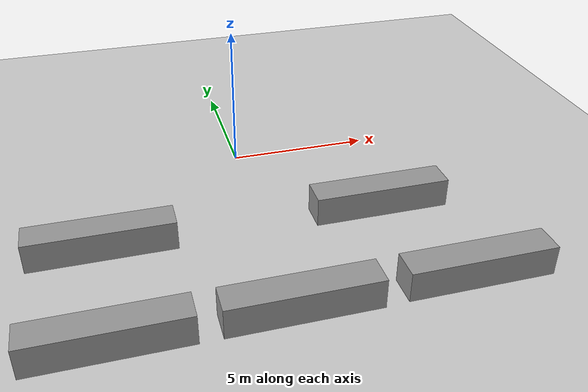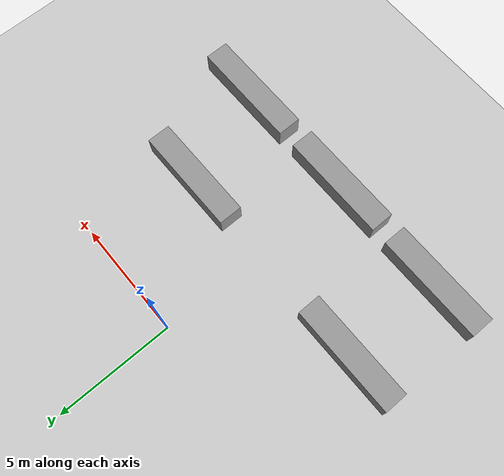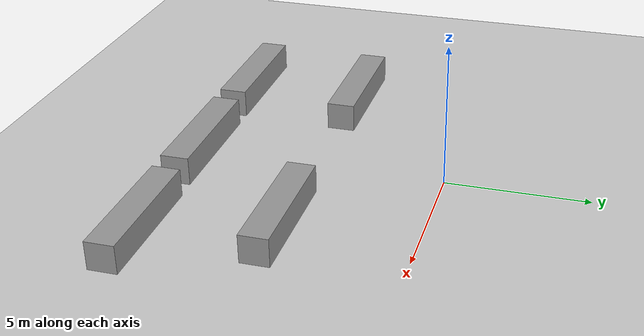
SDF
<sdf version="1.7">
 <world name="default">
  <model name="ground_plane">
   <static>1</static>
   <link name="link">
    <collision name="collision">
     <geometry><plane><normal>0 0 1</normal><size>100 100</size></plane></geometry>
     <surface><friction><ode><mu>100</mu><mu2>50</mu2></ode></friction></surface>
    </collision>
    <visual name="visual">
     <cast_shadows>0</cast_shadows>
     <geometry><plane><normal>0 0 1</normal><size>100 100</size></plane></geometry>
     <material>
      <script><uri>file://media/materials/scripts/gazebo.material</uri><name>Gazebo/Grey</name></script>
     </material>
    </visual>
   </link>
  </model>
  <light name="sun" type="directional">
   <pose>0 0 10 0 -0 0</pose>
   <diffuse>0.8 0.8 0.8 1</diffuse>
   <specular>0.2 0.2 0.2 1</specular>
   <attenuation>
    <range>1000</range>
    <constant>0.9</constant>
    <linear>0.01</linear>
    <quadratic>0.001</quadratic>
   </attenuation>
   <direction>-0.5 0.1 -0.9</direction>
   <spot><inner_angle>0</inner_angle><outer_angle>0</outer_angle><falloff>0</falloff></spot>
  </light>
  <scene><shadows>0</shadows><ambient>0.4 0.4 0.4 1</ambient><background>0.7 0.7 0.7 1</background></scene>
  <physics type="ode">
   <real_time_update_rate>1000</real_time_update_rate>
   <max_step_size>0.001</max_step_size>
   <real_time_factor>1</real_time_factor>
   <ode>
    <solver>
     <type>quick</type>
     <iters>150</iters>
     <precon_iters>0</precon_iters>
     <sor>1.4</sor>
     <use_dynamic_moi_rescaling>1</use_dynamic_moi_rescaling>
    </solver>
    <constraints>
     <cfm>1e-05</cfm>
     <erp>0.2</erp>
     <contact_max_correcting_vel>2000</contact_max_correcting_vel>
     <contact_surface_layer>0.01</contact_surface_layer>
    </constraints>
   </ode>
  </physics>
  <gravity>0 0 -9.8</gravity>
  <magnetic_field>6e-06 2.3e-05 -4.2e-05</magnetic_field>
  <atmosphere type="adiabatic"/>
  <audio><device>default</device></audio>
  <spherical_coordinates>
   <surface_model>EARTH_WGS84</surface_model>
   <latitude_deg>0</latitude_deg>
   <longitude_deg>0</longitude_deg>
   <elevation>0</elevation>
   <heading_deg>0</heading_deg>
  </spherical_coordinates>
  <model name="unit_box_clone">
   <pose>3.98901 -4.5275 0.498524 0 0.000639 0</pose>
   <link name="link">
    <inertial>
     <mass>1</mass>
     <inertia>
      <ixx>0.166667</ixx>
      <ixy>0</ixy>
      <ixz>0</ixz>
      <iyy>0.166667</iyy>
      <iyz>0</iyz>
      <izz>0.166667</izz>
     </inertia>
    </inertial>
    <collision name="collision"><geometry><box><size>4.62129 1 1</size></box></geometry></collision>
    <visual name="visual">
     <geometry><box><size>4.62129 1 1</size></box></geometry>
     <material>
      <script><name>Gazebo/Grey</name><uri>file://media/materials/scripts/gazebo.material</uri></script>
     </material>
    </visual>
   </link>
  </model>
  <model name="unit_box_0">
   <pose>-5.37216 -8.82047 0.498385 0 -0.000686 0</pose>
   <link name="link">
    <inertial>
     <mass>1</mass>
     <inertia>
      <ixx>0.166667</ixx>
      <ixy>0</ixy>
      <ixz>0</ixz>
      <iyy>0.166667</iyy>
      <iyz>0</iyz>
      <izz>0.166667</izz>
     </inertia>
    </inertial>
    <collision name="collision"><geometry><box><size>4.71196 1 1</size></box></geometry></collision>
    <visual name="visual">
     <geometry><box><size>4.71196 1 1</size></box></geometry>
     <material>
      <script><name>Gazebo/Grey</name><uri>file://media/materials/scripts/gazebo.material</uri></script>
     </material>
    </visual>
   </link>
  </model>
  <model name="unit_box_0_clone">
   <pose>0.014251 -8.82074 0.498385 0 0.000686 0</pose>
   <link name="link">
    <inertial>
     <mass>1</mass>
     <inertia>
      <ixx>0.166667</ixx>
      <ixy>0</ixy>
      <ixz>0</ixz>
      <iyy>0.166667</iyy>
      <iyz>0</iyz>
      <izz>0.166667</izz>
     </inertia>
    </inertial>
    <collision name="collision"><geometry><box><size>4.71196 1 1</size></box></geometry></collision>
    <visual name="visual">
     <geometry><box><size>4.71196 1 1</size></box></geometry>
     <material>
      <script><name>Gazebo/Grey</name><uri>file://media/materials/scripts/gazebo.material</uri></script>
     </material>
    </visual>
   </link>
  </model>
  <model name="unit_box_0_clone_0">
   <pose>5.46176 -8.77788 0.498385 0 -0.000686 0</pose>
   <link name="link">
    <inertial>
     <mass>1</mass>
     <inertia>
      <ixx>0.166667</ixx>
      <ixy>0</ixy>
      <ixz>0</ixz>
      <iyy>0.166667</iyy>
      <iyz>0</iyz>
      <izz>0.166667</izz>
     </inertia>
    </inertial>
    <collision name="collision"><geometry><box><size>4.71196 1 1</size></box></geometry></collision>
    <visual name="visual">
     <geometry><box><size>4.71196 1 1</size></box></geometry>
     <material>
      <script><name>Gazebo/Grey</name><uri>file://media/materials/scripts/gazebo.material</uri></script>
     </material>
    </visual>
   </link>
  </model>
  <model name="unit_box_0_clone_1">
   <pose>-5.27041 -4.51687 0.498385 0 0.000686 0</pose>
   <link name="link">
    <inertial>
     <mass>1</mass>
     <inertia>
      <ixx>0.166667</ixx>
      <ixy>0</ixy>
      <ixz>0</ixz>
      <iyy>0.166667</iyy>
      <iyz>0</iyz>
      <izz>0.166667</izz>
     </inertia>
    </inertial>
    <collision name="collision"><geometry><box><size>4.71196 1 1</size></box></geometry></collision>
    <visual name="visual">
     <geometry><box><size>4.71196 1 1</size></box></geometry>
     <material>
      <script><name>Gazebo/Grey</name><uri>file://media/materials/scripts/gazebo.material</uri></script>
     </material>
    </visual>
   </link>
  </model>
 </world>
</sdf>
